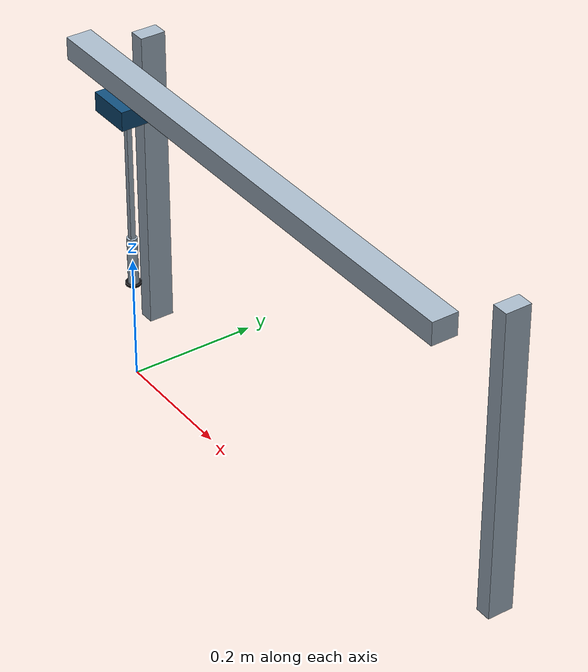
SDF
<?xml version='1.0' encoding='utf-8'?>
<sdf version="1.9">
  <model name="gantry">
    <static>false</static>
    <self_collide>true</self_collide>
    <link name="base">
      <pose>0 0 0.5 0 0 0</pose>
      <inertial>
        <mass>2</mass>
        <inertia>
          <ixx>0.003333333333333334</ixx>
          <iyy>0.003333333333333334</iyy>
          <izz>0.003333333333333334</izz>
          <ixy>0</ixy>
          <ixz>0</ixz>
          <iyz>0</iyz>
        </inertia>
      </inertial>
      <visual name="cross_rail">
        <pose>0.3 0 0 0 0 0</pose>
        <geometry>
          <box>
            <size>0.85 0.04 0.035</size>
          </box>
        </geometry>
        <material>
          <ambient>0.65 0.72 0.78 1</ambient>
          <diffuse>0.65 0.72 0.78 1</diffuse>
        </material>
      </visual>
      <collision name="cross_rail_collision">
        <pose>0.3 0 0 0 0 0</pose>
        <geometry>
          <box>
            <size>0.85 0.04 0.035</size>
          </box>
        </geometry>
        <surface>
          <friction>
            <ode>
              <mu>0.9</mu>
              <mu2>0.9</mu2>
            </ode>
          </friction>
        </surface>
      </collision>
      <visual name="post_-0.1">
        <pose>-0.1 0.1 -0.245 0 0 0</pose>
        <geometry>
          <box>
            <size>0.025 0.04 0.49</size>
          </box>
        </geometry>
        <material>
          <ambient>0.65 0.72 0.78 1</ambient>
          <diffuse>0.65 0.72 0.78 1</diffuse>
        </material>
      </visual>
      <collision name="post_-0.1_collision">
        <pose>-0.1 0.1 -0.245 0 0 0</pose>
        <geometry>
          <box>
            <size>0.025 0.04 0.49</size>
          </box>
        </geometry>
        <surface>
          <friction>
            <ode>
              <mu>0.9</mu>
              <mu2>0.9</mu2>
            </ode>
          </friction>
        </surface>
      </collision>
      <visual name="post_0.73">
        <pose>0.73 0.1 -0.245 0 0 0</pose>
        <geometry>
          <box>
            <size>0.025 0.04 0.49</size>
          </box>
        </geometry>
        <material>
          <ambient>0.65 0.72 0.78 1</ambient>
          <diffuse>0.65 0.72 0.78 1</diffuse>
        </material>
      </visual>
      <collision name="post_0.73_collision">
        <pose>0.73 0.1 -0.245 0 0 0</pose>
        <geometry>
          <box>
            <size>0.025 0.04 0.49</size>
          </box>
        </geometry>
        <surface>
          <friction>
            <ode>
              <mu>0.9</mu>
              <mu2>0.9</mu2>
            </ode>
          </friction>
        </surface>
      </collision>
    </link>
    <joint name="world_mount" type="fixed">
      <parent>world</parent>
      <child>base</child>
    </joint>
    <link name="carriage">
      <pose>0 0 0.46 0 0 0</pose>
      <inertial>
        <mass>0.25</mass>
        <inertia>
          <ixx>0.00041666666666666675</ixx>
          <iyy>0.00041666666666666675</iyy>
          <izz>0.00041666666666666675</izz>
          <ixy>0</ixy>
          <ixz>0</ixz>
          <iyz>0</iyz>
        </inertia>
      </inertial>
      <visual name="slider">
        <pose>0 0 0 0 0 0</pose>
        <geometry>
          <box>
            <size>0.07 0.06 0.03</size>
          </box>
        </geometry>
        <material>
          <ambient>0.06 0.30 0.48 1</ambient>
          <diffuse>0.06 0.30 0.48 1</diffuse>
        </material>
      </visual>
      <collision name="slider_collision">
        <pose>0 0 0 0 0 0</pose>
        <geometry>
          <box>
            <size>0.07 0.06 0.03</size>
          </box>
        </geometry>
        <surface>
          <friction>
            <ode>
              <mu>0.9</mu>
              <mu2>0.9</mu2>
            </ode>
          </friction>
        </surface>
      </collision>
    </link>
    <link name="wand">
      <pose>0 0 0.2 0 0 0</pose>
      <inertial>
        <mass>0.08</mass>
        <inertia>
          <ixx>4.482666666666667e-05</ixx>
          <iyy>4.482666666666667e-05</iyy>
          <izz>4.319999999999999e-06</izz>
          <ixy>0</ixy>
          <ixz>0</ixz>
          <iyz>0</iyz>
        </inertia>
      </inertial>
      <visual name="vacuum_wand">
        <pose>0 0 0 0 0 0</pose>
        <geometry>
          <cylinder>
            <radius>0.008</radius>
            <length>0.08</length>
          </cylinder>
        </geometry>
        <material>
          <ambient>0.65 0.72 0.78 1</ambient>
          <diffuse>0.65 0.72 0.78 1</diffuse>
        </material>
      </visual>
      <collision name="vacuum_wand_collision">
        <pose>0 0 0 0 0 0</pose>
        <geometry>
          <cylinder>
            <radius>0.008</radius>
            <length>0.08</length>
          </cylinder>
        </geometry>
        <surface>
          <friction>
            <ode>
              <mu>0.9</mu>
              <mu2>0.9</mu2>
            </ode>
          </friction>
        </surface>
      </collision>
      <visual name="vacuum_cup">
        <pose>0 0 -0.038 0 0 0</pose>
        <geometry>
          <cylinder>
            <radius>0.012</radius>
            <length>0.004</length>
          </cylinder>
        </geometry>
        <material>
          <ambient>0.05 0.05 0.06 1</ambient>
          <diffuse>0.05 0.05 0.06 1</diffuse>
        </material>
      </visual>
      <collision name="vacuum_cup_collision">
        <pose>0 0 -0.038 0 0 0</pose>
        <geometry>
          <cylinder>
            <radius>0.012</radius>
            <length>0.004</length>
          </cylinder>
        </geometry>
        <surface>
          <friction>
            <ode>
              <mu>0.9</mu>
              <mu2>0.9</mu2>
            </ode>
          </friction>
        </surface>
      </collision>
      <visual name="z_rod">
        <pose>0 0 0.155 0 0 0</pose>
        <geometry>
          <box>
            <size>0.008 0.008 0.25</size>
          </box>
        </geometry>
        <material>
          <ambient>0.65 0.72 0.78 1</ambient>
          <diffuse>0.65 0.72 0.78 1</diffuse>
        </material>
      </visual>
    </link>
    <joint name="gantry_x" type="prismatic">
      <parent>base</parent>
      <child>carriage</child>
      <axis>
        <xyz>1 0 0</xyz>
        <limit>
          <lower>-0.01</lower>
          <upper>0.66</upper>
          <effort>100</effort>
          <velocity>0.12</velocity>
        </limit>
      </axis>
    </joint>
    <plugin filename="gz-sim-joint-position-controller-system" name="gz::sim::systems::JointPositionController">
      <joint_name>gantry_x</joint_name>
      <topic>/actuators/gantry_x</topic>
      <use_velocity_commands>true</use_velocity_commands>
      <cmd_max>0.07</cmd_max>
    </plugin>
    <joint name="gantry_z" type="prismatic">
      <parent>carriage</parent>
      <child>wand</child>
      <axis>
        <xyz>0 0 1</xyz>
        <limit>
          <lower>-0.005</lower>
          <upper>0.22</upper>
          <effort>100</effort>
          <velocity>0.12</velocity>
        </limit>
      </axis>
    </joint>
    <plugin filename="gz-sim-joint-position-controller-system" name="gz::sim::systems::JointPositionController">
      <joint_name>gantry_z</joint_name>
      <topic>/actuators/gantry_z</topic>
      <use_velocity_commands>true</use_velocity_commands>
      <cmd_max>0.07</cmd_max>
    </plugin>
    <plugin filename="gz-sim-joint-state-publisher-system" name="gz::sim::systems::JointStatePublisher">
      <topic>/gantry/joint_states</topic>
    </plugin>
    <plugin filename="gz-sim-detachable-joint-system" name="gz::sim::systems::DetachableJoint">
      <parent_link>wand</parent_link>
      <child_model>wafer</child_model>
      <child_link>body</child_link>
      <attach_topic>/attachments/vacuum/attach</attach_topic>
      <detach_topic>/attachments/vacuum/detach</detach_topic>
      <output_topic>/attachments/vacuum/state</output_topic>
    </plugin>
  </model>
</sdf>
